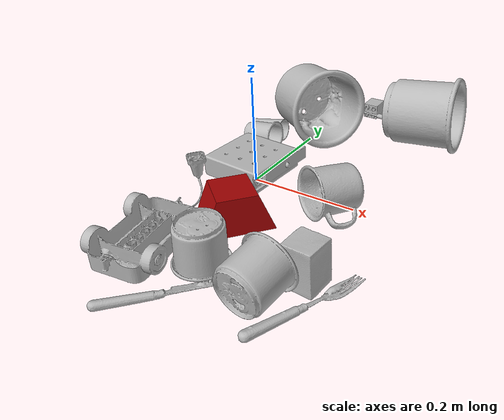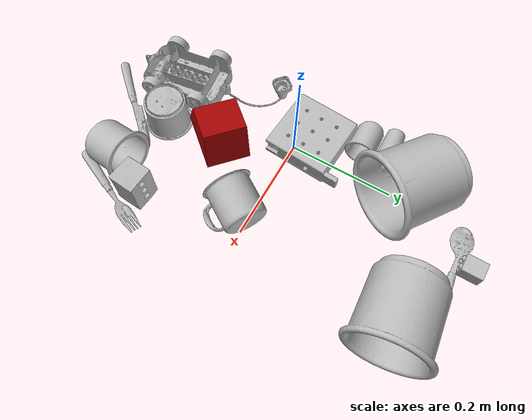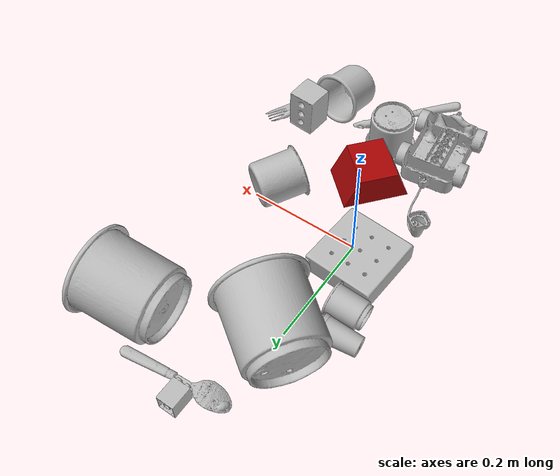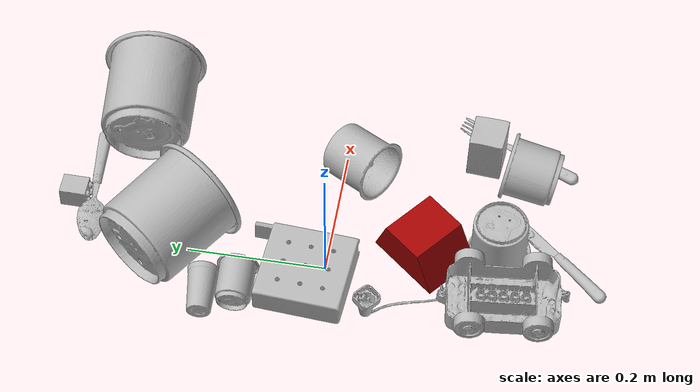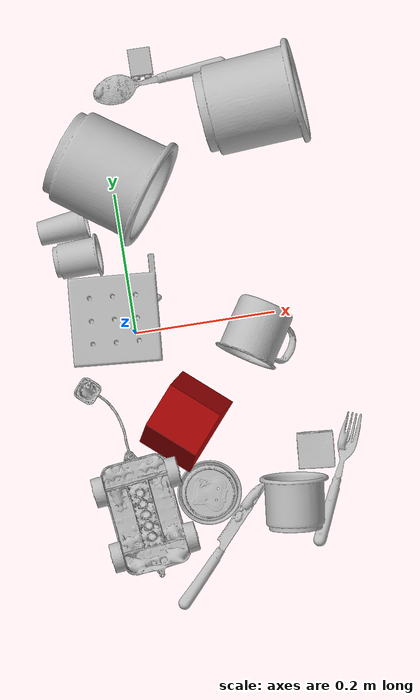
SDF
<sdf version="1.4">
  <world name="default">
    <light name="light1" type="point">
      <pose>0 0 1 0 0 0</pose>
      <diffuse>3 3 3 1</diffuse>
      <specular>3 3 3 1</specular>
    </light>
    <light name="light2" type="point">
      <pose>0 0.5 2 0 0 0</pose>
      <diffuse>1 1 1 1</diffuse>
      <specular>1 1 1 1</specular>
    </light>
    <light name="light3" type="point">
      <pose>0 0.5 2 0 0 0</pose>
      <diffuse>3 3 3 1</diffuse>
      <specular>3 3 3 1</specular>
    </light>
    <scene>
      <ambient>0.7 0.7 0.7</ambient>
    </scene>
    <model name="cup1">
      <link name="link_cup1">
        <collision name="default">
          <geometry>
            <mesh>
              <uri>model://i_cups/collision_meshes/collision.obj</uri>
              <scale>1.0 1.0 1.0</scale>
            </mesh>
          </geometry>
          <surface>
            <friction>
              <ode>
                <mu>0.5</mu>
                <mu2>0.5</mu2>
              </ode>
            </friction>
          <contact>
        <ode>
            <max_vel>0</max_vel>
            <min_depth>0.0001</min_depth>
            <kp>1e8</kp>
        </ode>
    </contact></surface>
        </collision>
        <visual name="default">
          <geometry>
            <mesh>
              <uri>model://i_cups/visual_meshes/visual.dae</uri>
              <scale>1.0 1.0 1.0</scale>
            </mesh>
          </geometry>
        </visual>
        <inertial>
          <mass>0.06118306145071983</mass>
          <pose>0.00011240330786677077 0.00016797454736661166 -0.0008579033892601728 -0.02898356853937009 -0.0398729445813228 -0.3459020996231002</pose>
          <inertia>
            <ixx>8.470886e-05</ixx>
            <iyy>8.5455235e-05</iyy>
            <izz>9.467588e-05</izz>
            <ixy>0</ixy>
            <ixz>0</ixz>
            <iyz>0</iyz>
          </inertia>
        </inertial>
      </link>
      <pose>0.18610139191150665 -0.27193504571914673 0.04489665478467941 1.0426857520885666 -1.3158807956628502 -2.744716003730729</pose>
    </model>
    <model name="silverware1">
      <link name="link_silverware1">
        <collision name="default">
          <geometry>
            <mesh>
              <uri>model://fork/collision_meshes/collision.obj</uri>
              <scale>1.0 1.0 1.0</scale>
            </mesh>
          </geometry>
          <surface>
            <friction>
              <ode>
                <mu>0.5</mu>
                <mu2>0.5</mu2>
              </ode>
            </friction>
          <contact>
        <ode>
            <max_vel>0</max_vel>
            <min_depth>0.0001</min_depth>
            <kp>1e8</kp>
        </ode>
    </contact></surface>
        </collision>
        <visual name="default">
          <geometry>
            <mesh>
              <uri>model://fork/visual_meshes/visual.dae</uri>
              <scale>1.0 1.0 1.0</scale>
            </mesh>
          </geometry>
        </visual>
        <inertial>
          <mass>0.031184576451778412</mass>
          <pose>-0.02957005426287651 0.00046588247641921043 0.0003218861820641905 -0.013551007459636681 -0.010977840933376642 0.014453907264632249</pose>
          <inertia>
            <ixx>1.0931959e-06</ixx>
            <iyy>8.1413935e-05</iyy>
            <izz>8.1902916e-05</izz>
            <ixy>0</ixy>
            <ixz>0</ixz>
            <iyz>0</iyz>
          </inertia>
        </inertial>
      </link>
      <pose>0.2514968514442444 -0.24904438853263855 0.005710449069738388 -0.18299100268174687 0.02456669480073228 1.1370163588433697</pose>
    </model>
    <model name="cup2">
      <link name="link_cup2">
        <collision name="default">
          <geometry>
            <mesh>
              <uri>model://cup_small/collision_meshes/collision.obj</uri>
              <scale>1.0 1.0 1.0</scale>
            </mesh>
          </geometry>
          <surface>
            <friction>
              <ode>
                <mu>0.5</mu>
                <mu2>0.5</mu2>
              </ode>
            </friction>
          <contact>
        <ode>
            <max_vel>0</max_vel>
            <min_depth>0.0001</min_depth>
            <kp>1e8</kp>
        </ode>
    </contact></surface>
        </collision>
        <visual name="default">
          <geometry>
            <mesh>
              <uri>model://cup_small/visual_meshes/visual.dae</uri>
              <scale>1.0 1.0 1.0</scale>
            </mesh>
          </geometry>
        </visual>
        <inertial>
          <mass>0.03407767415046692</mass>
          <pose>0.0001048250705935061 -0.00033778452780097723 -0.010742825455963612 -0.011493231776776816 -0.015280154496379641 -0.5058119732839097</pose>
          <inertia>
            <ixx>2.0064415e-05</ixx>
            <iyy>2.0167918e-05</iyy>
            <izz>9.059144e-06</izz>
            <ixy>0</ixy>
            <ixz>0</ixz>
            <iyz>0</iyz>
          </inertia>
        </inertial>
      </link>
      <pose>-0.07924192398786545 0.16357426345348358 0.019945751875638962 -1.3309588734080282 1.1891025016607109 -1.2628960111414964</pose>
    </model>
    <model name="silverware2">
      <link name="link_silverware2">
        <collision name="default">
          <geometry>
            <mesh>
              <uri>model://spoon/collision_meshes/collision.obj</uri>
              <scale>1.0 1.0 1.0</scale>
            </mesh>
          </geometry>
          <surface>
            <friction>
              <ode>
                <mu>0.5</mu>
                <mu2>0.5</mu2>
              </ode>
            </friction>
          <contact>
        <ode>
            <max_vel>0</max_vel>
            <min_depth>0.0001</min_depth>
            <kp>1e8</kp>
        </ode>
    </contact></surface>
        </collision>
        <visual name="default">
          <geometry>
            <mesh>
              <uri>model://spoon/visual_meshes/visual.dae</uri>
              <scale>1.0 1.0 1.0</scale>
            </mesh>
          </geometry>
        </visual>
        <inertial>
          <mass>0.016614587977528572</mass>
          <pose>-0.005526317749172449 -0.0016034182626754045 -0.0007271657232195139 0.03521671066550848 -0.039065848782153245 0.0061506117821598484</pose>
          <inertia>
            <ixx>9.241303e-07</ixx>
            <iyy>6.321795e-05</iyy>
            <izz>6.367369e-05</izz>
            <ixy>0</ixy>
            <ixz>0</ixz>
            <iyz>0</iyz>
          </inertia>
        </inertial>
      </link>
      <pose>0.08811113238334656 0.3555315434932709 0.010133820585906506 3.1048836286478365 -0.061974133752475916 -3.0389260528325277</pose>
    </model>
    <model name="cup3">
      <link name="link_cup3">
        <collision name="default">
          <geometry>
            <mesh>
              <uri>model://mug/collision_meshes/collision.obj</uri>
              <scale>1.0 1.0 1.0</scale>
            </mesh>
          </geometry>
          <surface>
            <friction>
              <ode>
                <mu>0.5</mu>
                <mu2>0.5</mu2>
              </ode>
            </friction>
          <contact>
        <ode>
            <max_vel>0</max_vel>
            <min_depth>0.0001</min_depth>
            <kp>1e8</kp>
        </ode>
    </contact></surface>
        </collision>
        <visual name="default">
          <geometry>
            <mesh>
              <uri>model://mug/visual_meshes/visual.dae</uri>
              <scale>1.0 1.0 1.0</scale>
            </mesh>
          </geometry>
        </visual>
        <inertial>
          <mass>0.2187051922082901</mass>
          <pose>0.009571668691933155 0.0008143252925947309 -0.0109473317861557 -0.1298317614392908 0.08737757629698793 0.05507296169044089</pose>
          <inertia>
            <ixx>0.00021724429</ixx>
            <iyy>0.00024264908</iyy>
            <izz>0.00028062687</izz>
            <ixy>0</ixy>
            <ixz>0</ixz>
            <iyz>0</iyz>
          </inertia>
        </inertial>
      </link>
      <pose>0.17822064459323883 -0.028963875025510788 0.03762590512633324 -1.468183168726019 -0.6051379962867319 2.522753775671549</pose>
    </model>
    <model name="silverware3">
      <link name="link_silverware3">
        <collision name="default">
          <geometry>
            <mesh>
              <uri>model://knife/collision_meshes/collision.obj</uri>
              <scale>1.0 1.0 1.0</scale>
            </mesh>
          </geometry>
          <surface>
            <friction>
              <ode>
                <mu>0.5</mu>
                <mu2>0.5</mu2>
              </ode>
            </friction>
          <contact>
        <ode>
            <max_vel>0</max_vel>
            <min_depth>0.0001</min_depth>
            <kp>1e8</kp>
        </ode>
    </contact></surface>
        </collision>
        <visual name="default">
          <geometry>
            <mesh>
              <uri>model://knife/visual_meshes/visual.dae</uri>
              <scale>1.0 1.0 1.0</scale>
            </mesh>
          </geometry>
        </visual>
        <inertial>
          <mass>0.02527560666203499</mass>
          <pose>-0.02378525398671627 0.0015275124460458755 5.062016498413868e-05 0.07305987488321217 0.01724841707462807 -0.007409821427235137</pose>
          <inertia>
            <ixx>7.174241e-07</ixx>
            <iyy>9.710476e-05</iyy>
            <izz>9.733581e-05</izz>
            <ixy>0</ixy>
            <ixz>0</ixz>
            <iyz>0</iyz>
          </inertia>
        </inertial>
      </link>
      <pose>0.07520347833633423 -0.31584224104881287 0.005810556001961231 2.889179044637002 0.025916478833956487 0.8401870821191385</pose>
    </model>
    <model name="cup4">
      <link name="link_cup4">
        <collision name="default">
          <geometry>
            <mesh>
              <uri>model://f_cups/collision_meshes/collision.obj</uri>
              <scale>2.0 2.0 2.0</scale>
            </mesh>
          </geometry>
          <surface>
            <friction>
              <ode>
                <mu>0.5</mu>
                <mu2>0.5</mu2>
              </ode>
            </friction>
          <contact>
        <ode>
            <max_vel>0</max_vel>
            <min_depth>0.0001</min_depth>
            <kp>1e8</kp>
        </ode>
    </contact></surface>
        </collision>
        <visual name="default">
          <geometry>
            <mesh>
              <uri>model://f_cups/visual_meshes/visual.dae</uri>
              <scale>2.0 2.0 2.0</scale>
            </mesh>
          </geometry>
        </visual>
        <inertial>
          <mass>0.45639780163764954</mass>
          <pose>-0.006342936772853136 -0.0012480145087465644 -0.007311072666198015 0.7862311529960513 -0.2607925047248709 -0.18237200478465204</pose>
          <inertia>
            <ixx>0.0017161043</ixx>
            <iyy>0.0018002132</iyy>
            <izz>0.0018740727</izz>
            <ixy>0</ixy>
            <ixz>0</ixz>
            <iyz>0</iyz>
          </inertia>
        </inertial>
      </link>
      <pose>-0.0037852488458156586 0.22672952711582184 0.07441294193267822 1.4690267105766002 0.10449126942532443 0.9462754219811041</pose>
    </model>
    <model name="cup41">
      <link name="link_cup41">
        <collision name="default">
          <geometry>
            <mesh>
              <uri>model://b_cups/collision_meshes/collision.obj</uri>
              <scale>1.0 1.0 1.0</scale>
            </mesh>
          </geometry>
          <surface>
            <friction>
              <ode>
                <mu>0.5</mu>
                <mu2>0.5</mu2>
              </ode>
            </friction>
          <contact>
        <ode>
            <max_vel>0</max_vel>
            <min_depth>0.0001</min_depth>
            <kp>1e8</kp>
        </ode>
    </contact></surface>
        </collision>
        <visual name="default">
          <geometry>
            <mesh>
              <uri>model://b_cups/visual_meshes/visual.dae</uri>
              <scale>1.0 1.0 1.0</scale>
            </mesh>
          </geometry>
        </visual>
        <inertial>
          <mass>0.02191556617617607</mass>
          <pose>0.0005182005115784705 0.0018058598507195711 -0.0013381809694692492 0.11356347292067202 0.038725069075056226 -0.34569439603942165</pose>
          <inertia>
            <ixx>1.4345273e-05</ixx>
            <iyy>1.4072923e-05</iyy>
            <izz>1.2071279e-05</izz>
            <ixy>0</ixy>
            <ixz>0</ixz>
            <iyz>0</iyz>
          </inertia>
        </inertial>
      </link>
      <pose>-0.06533195078372955 0.11710843443870544 0.027618182823061943 1.4353216305941392 0.7530258806195392 1.5131009847730894</pose>
    </model>
    <model name="cup5">
      <link name="link_cup5">
        <collision name="default">
          <geometry>
            <mesh>
              <uri>model://e_cups/collision_meshes/collision.obj</uri>
              <scale>2.0 2.0 2.0</scale>
            </mesh>
          </geometry>
          <surface>
            <friction>
              <ode>
                <mu>0.5</mu>
                <mu2>0.5</mu2>
              </ode>
            </friction>
          <contact>
        <ode>
            <max_vel>0</max_vel>
            <min_depth>0.0001</min_depth>
            <kp>1e8</kp>
        </ode>
    </contact></surface>
        </collision>
        <visual name="default">
          <geometry>
            <mesh>
              <uri>model://e_cups/visual_meshes/visual.dae</uri>
              <scale>2.0 2.0 2.0</scale>
            </mesh>
          </geometry>
        </visual>
        <inertial>
          <mass>0.30448246002197266</mass>
          <pose>0.0022711469791829586 0.005759572610259056 -0.00776594178751111 0.6952384510578399 0.08767941436067322 -0.5235260729612989</pose>
          <inertia>
            <ixx>0.0010739095</ixx>
            <iyy>0.001122389</iyy>
            <izz>0.0010267813</izz>
            <ixy>0</ixy>
            <ixz>0</ixz>
            <iyz>0</iyz>
          </inertia>
        </inertial>
      </link>
      <pose>0.2103840559720993 0.29736557602882385 0.06930118799209595 -1.484443454008972 -0.035906138936871404 -1.492522232672545</pose>
    </model>
    <model name="cup51">
      <link name="link_cup51">
        <collision name="default">
          <geometry>
            <mesh>
              <uri>model://h_cups/collision_meshes/collision.obj</uri>
              <scale>1.0 1.0 1.0</scale>
            </mesh>
          </geometry>
          <surface>
            <friction>
              <ode>
                <mu>0.5</mu>
                <mu2>0.5</mu2>
              </ode>
            </friction>
          <contact>
        <ode>
            <max_vel>0</max_vel>
            <min_depth>0.0001</min_depth>
            <kp>1e8</kp>
        </ode>
    </contact></surface>
        </collision>
        <visual name="default">
          <geometry>
            <mesh>
              <uri>model://h_cups/visual_meshes/visual.dae</uri>
              <scale>1.0 1.0 1.0</scale>
            </mesh>
          </geometry>
        </visual>
        <inertial>
          <mass>0.042455922812223434</mass>
          <pose>-2.703044083318673e-05 0.00023018660431262106 -0.0018405403243377805 -0.024361995264993386 0.06545231449212868 0.1288536550905752</pose>
          <inertia>
            <ixx>5.4829856e-05</ixx>
            <iyy>5.4175573e-05</iyy>
            <izz>5.7501496e-05</izz>
            <ixy>0</ixy>
            <ixz>0</ixz>
            <iyz>0</iyz>
          </inertia>
        </inertial>
      </link>
      <pose>0.06928253173828125 -0.23975594341754913 0.037564247846603394 -3.1410425320668174 0.0004972108730932004 2.9222899687418344</pose>
    </model>
    <model name="toy1">
      <link name="link_toy1">
        <collision name="default">
          <geometry>
            <mesh>
              <uri>model://f_lego_duplo/collision_meshes/collision.obj</uri>
              <scale>1.0 1.0 1.0</scale>
            </mesh>
          </geometry>
          <surface>
            <friction>
              <ode>
                <mu>0.5</mu>
                <mu2>0.5</mu2>
              </ode>
            </friction>
          <contact>
        <ode>
            <max_vel>0</max_vel>
            <min_depth>0.0001</min_depth>
            <kp>1e8</kp>
        </ode>
    </contact></surface>
        </collision>
        <visual name="default">
          <geometry>
            <mesh>
              <uri>model://f_lego_duplo/visual_meshes/visual.dae</uri>
              <scale>1.0 1.0 1.0</scale>
            </mesh>
          </geometry>
        </visual>
        <inertial>
          <mass>0.02241816557943821</mass>
          <pose>2.3694117771810852e-05 0.0001339316659141332 0.0018837875686585903 0.029838520561624126 -0.014425134948969536 -0.6756620822172864</pose>
          <inertia>
            <ixx>4.7370827e-06</ixx>
            <iyy>4.779284e-06</iyy>
            <izz>4.1119874e-06</izz>
            <ixy>0</ixy>
            <ixz>0</ixz>
            <iyz>0</iyz>
          </inertia>
        </inertial>
      </link>
      <pose>0.0650065466761589 0.3780084550380707 0.016207214444875717 1.578989720917283 0.0001466309165870952 0.00023385383318758608</pose>
    </model>
    <model name="toy2">
      <link name="link_toy2">
        <collision name="default">
          <geometry>
            <mesh>
              <uri>model://nine_hole_peg_test/collision_meshes/collision.obj</uri>
              <scale>1.0 1.0 1.0</scale>
            </mesh>
          </geometry>
          <surface>
            <friction>
              <ode>
                <mu>0.5</mu>
                <mu2>0.5</mu2>
              </ode>
            </friction>
          <contact>
        <ode>
            <max_vel>0</max_vel>
            <min_depth>0.0001</min_depth>
            <kp>1e8</kp>
        </ode>
    </contact></surface>
        </collision>
        <visual name="default">
          <geometry>
            <mesh>
              <uri>model://nine_hole_peg_test/visual_meshes/visual.dae</uri>
              <scale>1.0 1.0 1.0</scale>
            </mesh>
          </geometry>
        </visual>
        <inertial>
          <mass>0.9336897134780884</mass>
          <pose>-0.004617386497557163 -0.009647615253925323 2.6460686058271676e-05 -0.0014666796876693252 0.0007194179493738156 -0.6342417556307235</pose>
          <inertia>
            <ixx>0.0014599775</ixx>
            <iyy>0.0013631656</iyy>
            <izz>0.0025583105</izz>
            <ixy>0</ixy>
            <ixz>0</ixz>
            <iyz>0</iyz>
          </inertia>
        </inertial>
      </link>
      <pose>-0.01989823952317238 0.03311357647180557 0.020771002396941185 9.377566476782212e-07 1.233500158676732e-07 -0.06766117341699412</pose>
    </model>
    <model name="toy3">
      <link name="link_toy3">
        <collision name="default">
          <geometry>
            <mesh>
              <uri>model://prism/collision_meshes/collision.obj</uri>
              <scale>1.0 1.0 1.0</scale>
            </mesh>
          </geometry>
          <surface>
            <friction>
              <ode>
                <mu>0.5</mu>
                <mu2>0.5</mu2>
              </ode>
            </friction>
          <contact>
        <ode>
            <max_vel>0</max_vel>
            <min_depth>0.0001</min_depth>
            <kp>1e8</kp>
        </ode>
    </contact></surface>
        </collision>
        <visual name="default">
          <geometry>
            <mesh>
              <uri>model://prism/visual_meshes/visual.dae</uri>
              <scale>1.0 1.0 1.0</scale>
            </mesh>
          </geometry>
        </visual>
        <inertial>
          <mass>0.45664992928504944</mass>
          <pose>-9.85359656624496e-05 -4.96157269935793e-07 -0.0033869100734591484 0.0 0.006559178903460961 0.0</pose>
          <inertia>
            <ixx>0.0004121209</ixx>
            <iyy>0.00049805344</iyy>
            <izz>0.0006100559</izz>
            <ixy>0</ixy>
            <ixz>0</ixz>
            <iyz>0</iyz>
          </inertia>
        </inertial>
      </link>
      <pose>0.04991091042757034 -0.13370196521282196 0.035154812037944794 -0.07312286749762519 1.3766441219490816e-05 0.8653151691300798</pose>
    </model>
    <model name="toy4">
      <link name="link_toy4">
        <collision name="default">
          <geometry>
            <mesh>
              <uri>model://g_lego_duplo/collision_meshes/collision.obj</uri>
              <scale>1.0 1.0 1.0</scale>
            </mesh>
          </geometry>
          <surface>
            <friction>
              <ode>
                <mu>0.5</mu>
                <mu2>0.5</mu2>
              </ode>
            </friction>
          <contact>
        <ode>
            <max_vel>0</max_vel>
            <min_depth>0.0001</min_depth>
            <kp>1e8</kp>
        </ode>
    </contact></surface>
        </collision>
        <visual name="default">
          <geometry>
            <mesh>
              <uri>model://g_lego_duplo/visual_meshes/visual.dae</uri>
              <scale>1.0 1.0 1.0</scale>
            </mesh>
          </geometry>
        </visual>
        <inertial>
          <mass>0.39620378613471985</mass>
          <pose>-0.05004769191145897 0.0017554654041305184 0.003880677744746208 0.010963058510667364 0.03810828654928447 -0.09653021192595126</pose>
          <inertia>
            <ixx>0.0005741041</ixx>
            <iyy>0.0017357017</iyy>
            <izz>0.0021714251</izz>
            <ixy>0</ixy>
            <ixz>0</ixz>
            <iyz>0</iyz>
          </inertia>
        </inertial>
      </link>
      <pose>-0.03643173724412918 -0.1971774697303772 0.02762899175286293 -3.1415913991995996 -0.030279578206982596 1.6938486350955297</pose>
    </model>
    <model name="toy5">
      <link name="link_toy5">
        <collision name="default">
          <geometry>
            <mesh>
              <uri>model://foam_brick/collision_meshes/collision.obj</uri>
              <scale>1.0 1.0 1.0</scale>
            </mesh>
          </geometry>
          <surface>
            <friction>
              <ode>
                <mu>0.5</mu>
                <mu2>0.5</mu2>
              </ode>
            </friction>
          <contact>
        <ode>
            <max_vel>0</max_vel>
            <min_depth>0.0001</min_depth>
            <kp>1e8</kp>
        </ode>
    </contact></surface>
        </collision>
        <visual name="default">
          <geometry>
            <mesh>
              <uri>model://foam_brick/visual_meshes/visual.dae</uri>
              <scale>1.0 1.0 1.0</scale>
            </mesh>
          </geometry>
        </visual>
        <inertial>
          <mass>0.10564772039651871</mass>
          <pose>-0.00025224717683158815 0.00034584361128509045 -0.00025321010616607964 -0.29402271699624904 0.017274444128295662 -0.0007449905040366932</pose>
          <inertia>
            <ixx>4.6148893e-05</ixx>
            <iyy>7.367908e-05</iyy>
            <izz>7.4615455e-05</izz>
            <ixy>0</ixy>
            <ixz>0</ixz>
            <iyz>0</iyz>
          </inertia>
        </inertial>
      </link>
      <pose>0.22664402425289154 -0.2020200788974762 0.03871989622712135 0.5938239864666823 -1.5392057287242702 -2.241258371132126</pose>
    </model>
  <physics type="ode">
      <max_contacts>50</max_contacts>
      <ode>
        <solver>
          <type>quick</type>
          <iters>75</iters>
        </solver>
        <constraints>
          <contact_max_correcting_vel>0</contact_max_correcting_vel>
          <contact_surface_layer>0</contact_surface_layer>
        </constraints>
      </ode>
    </physics></world>
</sdf>
